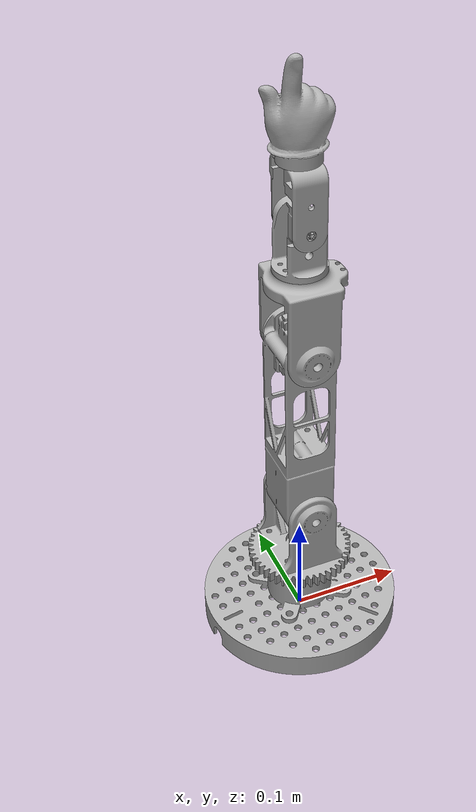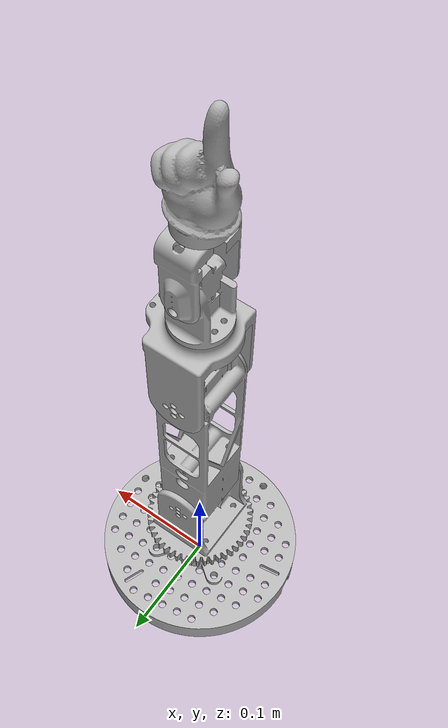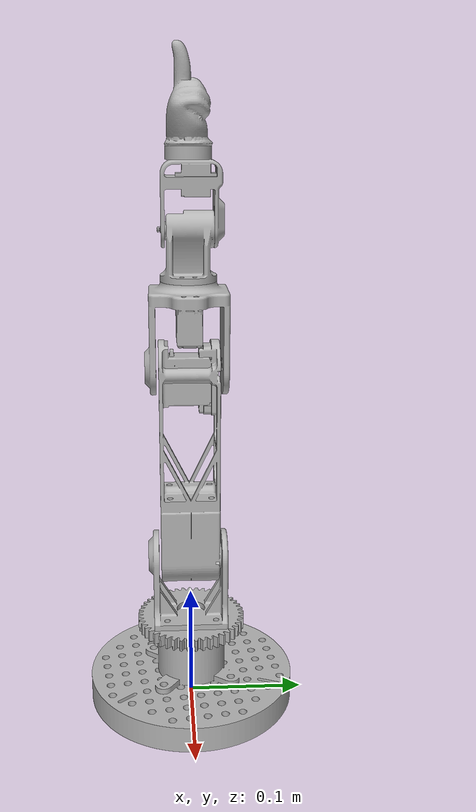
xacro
<?xml version="1.0"?>
<robot xmlns:xacro="http://www.ros.org/wiki/xacro" name="manipulator_ros2">
    <xacro:arg name="initial_positions_file" default="initial_positions.yaml" />

    <!-- Import manipulator_ros2 urdf file -->
    <xacro:include filename="$(find manipulator_ros2_description)/urdf/manipulator_ros2.xacro" />

    <!-- Import control_xacro -->
    <xacro:include filename="manipulator_ros2.ros2_control.xacro" />

    <xacro:manipulator_ros2_ros2_control name="FakeSystem" initial_positions_file="$(arg initial_positions_file)"/>

</robot>

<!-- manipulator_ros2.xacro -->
<robot name="manipulator_ros2" xmlns:xacro="http://www.ros.org/wiki/xacro">

<xacro:include filename="$(find manipulator_ros2_description)/urdf/materials.xacro" />
<xacro:include filename="$(find manipulator_ros2_description)/urdf/manipulator_ros2.trans" />
<xacro:include filename="$(find manipulator_ros2_description)/urdf/manipulator_ros2.gazebo" />

<link name="base_link">
  <inertial>
    <origin xyz="0.00014955285846922025 2.2839923289743684e-05 0.0290981401490612" rpy="0 0 0"/>
    <mass value="0.25826224486529137"/>
    <inertia ixx="0.00044" iyy="0.000436" izz="0.000759" ixy="1e-06" iyz="0.0" ixz="1e-06"/>
  </inertial>
  <visual>
    <origin xyz="0 0 0" rpy="0 0 0"/>
    <geometry>
      <mesh filename="file://$(find manipulator_ros2_description)/meshes/base_link.stl" scale="0.001 0.001 0.001"/>
    </geometry>
    <material name="silver"/>
  </visual>
  <collision>
    <origin xyz="0 0 0" rpy="0 0 0"/>
    <geometry>
      <mesh filename="file://$(find manipulator_ros2_description)/meshes/base_link.stl" scale="0.001 0.001 0.001"/>
    </geometry>
  </collision>
</link>

<link name="link_1_1">
  <inertial>
    <origin xyz="-4.758358515705865e-06 -0.0009697104964107475 0.023444674137823543" rpy="0 0 0"/>
    <mass value="0.12358014218717779"/>
    <inertia ixx="0.000136" iyy="0.000109" izz="0.000114" ixy="0.0" iyz="5e-06" ixz="0.0"/>
  </inertial>
  <visual>
    <origin xyz="-0.0 -0.0 -0.063" rpy="0 0 0"/>
    <geometry>
      <mesh filename="file://$(find manipulator_ros2_description)/meshes/link_1_1.stl" scale="0.001 0.001 0.001"/>
    </geometry>
    <material name="silver"/>
  </visual>
  <collision>
    <origin xyz="-0.0 -0.0 -0.063" rpy="0 0 0"/>
    <geometry>
      <mesh filename="file://$(find manipulator_ros2_description)/meshes/link_1_1.stl" scale="0.001 0.001 0.001"/>
    </geometry>
  </collision>
</link>

<link name="link_2_1">
  <inertial>
    <origin xyz="-9.819895678735285e-05 -0.00014693334989390684 0.07181187739780545" rpy="0 0 0"/>
    <mass value="0.19645503989254853"/>
    <inertia ixx="0.000895" iyy="0.00088" izz="8.3e-05" ixy="0.0" iyz="2e-06" ixz="1e-06"/>
  </inertial>
  <visual>
    <origin xyz="2.7e-05 0.000565 -0.135511" rpy="0 0 0"/>
    <geometry>
      <mesh filename="file://$(find manipulator_ros2_description)/meshes/link_2_1.stl" scale="0.001 0.001 0.001"/>
    </geometry>
    <material name="silver"/>
  </visual>
  <collision>
    <origin xyz="2.7e-05 0.000565 -0.135511" rpy="0 0 0"/>
    <geometry>
      <mesh filename="file://$(find manipulator_ros2_description)/meshes/link_2_1.stl" scale="0.001 0.001 0.001"/>
    </geometry>
  </collision>
</link>

<link name="link_3_1">
  <inertial>
    <origin xyz="0.004087787989537511 -0.0009393142455362529 0.03926993227588771" rpy="0 0 0"/>
    <mass value="0.09551397551862403"/>
    <inertia ixx="9.1e-05" iyy="7e-05" izz="6.3e-05" ixy="-0.0" iyz="-3e-06" ixz="-2e-06"/>
  </inertial>
  <visual>
    <origin xyz="7.4e-05 0.000665 -0.304933" rpy="0 0 0"/>
    <geometry>
      <mesh filename="file://$(find manipulator_ros2_description)/meshes/link_3_1.stl" scale="0.001 0.001 0.001"/>
    </geometry>
    <material name="silver"/>
  </visual>
  <collision>
    <origin xyz="7.4e-05 0.000665 -0.304933" rpy="0 0 0"/>
    <geometry>
      <mesh filename="file://$(find manipulator_ros2_description)/meshes/link_3_1.stl" scale="0.001 0.001 0.001"/>
    </geometry>
  </collision>
</link>

<link name="link_4_1">
  <inertial>
    <origin xyz="0.0014822815844658618 0.0003280078370169844 0.0232381041762576" rpy="0 0 0"/>
    <mass value="0.038346600988021666"/>
    <inertia ixx="1.5e-05" iyy="1.2e-05" izz="7e-06" ixy="0.0" iyz="-0.0" ixz="-1e-06"/>
  </inertial>
  <visual>
    <origin xyz="-0.000134 0.000665 -0.375933" rpy="0 0 0"/>
    <geometry>
      <mesh filename="file://$(find manipulator_ros2_description)/meshes/link_4_1.stl" scale="0.001 0.001 0.001"/>
    </geometry>
    <material name="silver"/>
  </visual>
  <collision>
    <origin xyz="-0.000134 0.000665 -0.375933" rpy="0 0 0"/>
    <geometry>
      <mesh filename="file://$(find manipulator_ros2_description)/meshes/link_4_1.stl" scale="0.001 0.001 0.001"/>
    </geometry>
  </collision>
</link>

<link name="link_5_1">
  <inertial>
    <origin xyz="0.0005521354684447922 0.0027459905432425037 0.030587143020476326" rpy="0 0 0"/>
    <mass value="0.027851162297357537"/>
    <inertia ixx="1.5e-05" iyy="9e-06" izz="9e-06" ixy="-0.0" iyz="1e-06" ixz="-0.0"/>
  </inertial>
  <visual>
    <origin xyz="-0.000255 -0.000223 -0.416383" rpy="0 0 0"/>
    <geometry>
      <mesh filename="file://$(find manipulator_ros2_description)/meshes/link_5_1.stl" scale="0.001 0.001 0.001"/>
    </geometry>
    <material name="silver"/>
  </visual>
  <collision>
    <origin xyz="-0.000255 -0.000223 -0.416383" rpy="0 0 0"/>
    <geometry>
      <mesh filename="file://$(find manipulator_ros2_description)/meshes/link_5_1.stl" scale="0.001 0.001 0.001"/>
    </geometry>
  </collision>
</link>

<link name="efector_1">
  <inertial>
    <origin xyz="7.017441023660716e-05 0.0005969072529317497 0.02862334780746889" rpy="0 0 0"/>
    <mass value="0.46837075835083564"/>
    <inertia ixx="0.000172" iyy="0.000208" izz="9.2e-05" ixy="-0.0" iyz="-4e-06" ixz="-7e-06"/>
  </inertial>
  <visual>
    <origin xyz="-0.000272 -0.000224 -0.46885" rpy="0 0 3.14159"/>
    <geometry>
      <mesh filename="file://$(find manipulator_ros2_description)/meshes/efector_1.stl" scale="0.001 0.001 0.001"/>
    </geometry>
    <material name="silver"/>
  </visual>
  <collision>
    <origin xyz="-0.000272 -0.000224 -0.46885" rpy="0 0 3.14159"/>
    <geometry>
      <mesh filename="file://$(find manipulator_ros2_description)/meshes/efector_1.stl" scale="0.001 0.001 0.001"/>
    </geometry>
  </collision>
</link>

<joint name="joint_base_to_1" type="revolute">
  <origin xyz="0.0 0.0 0.063" rpy="0 0 0"/>
  <parent link="base_link"/>
  <child link="link_1_1"/>
  <axis xyz="0.0 0.0 1.0"/>
  <limit lower="-2.1293" upper="1.7802" effort="10.0" velocity="1.5"/>
</joint>

<joint name="joint_1_to_2" type="revolute">
  <origin xyz="-2.7e-05 -0.000565 0.072511" rpy="0 0 0"/>
  <parent link="link_1_1"/>
  <child link="link_2_1"/>
  <axis xyz="0.002718 -0.999996 0.0"/>
  <limit lower="-2.2689" upper="2.4435" effort="10.0" velocity="1.5"/>
</joint>

<joint name="joint_2_to_3" type="revolute">
  <origin xyz="-4.7e-05 -0.0001 0.169422" rpy="0 0 0"/>
  <parent link="link_2_1"/>
  <child link="link_3_1"/>
  <axis xyz="0.002718 -0.999996 -0.0"/>
  <limit lower="-2.4435" upper="2.2689" effort="10.0" velocity="1.5"/>
</joint>

<joint name="joint_3_to_4" type="revolute">
  <origin xyz="0.000208 0.0 0.071" rpy="0 0 0"/>
  <parent link="link_3_1"/>
  <child link="link_4_1"/>
  <axis xyz="0.002932 8e-06 0.999996"/>
  <limit lower="-1.3963" upper="1.7453" effort="10.0" velocity="1.5"/>
</joint>

<joint name="joint_4_to_5" type="revolute">
  <origin xyz="0.000121 0.000888 0.04045" rpy="0 0 0"/>
  <parent link="link_4_1"/>
  <child link="link_5_1"/>
  <axis xyz="0.003099 0.999995 -1.7e-05"/>
  <limit lower="-1.3963" upper="1.7453" effort="10.0" velocity="1.5"/>
</joint>

<joint name="joint_5_to_eff" type="revolute">
  <origin xyz="1.7e-05 1e-06 0.052467" rpy="0 0 0"/>
  <parent link="link_5_1"/>
  <child link="efector_1"/>
  <axis xyz="-0.004131 -4e-06 -0.999991"/>
  <limit lower="-1.5708" upper="1.5708" effort="10.0" velocity="1.5"/>
</joint>

</robot>

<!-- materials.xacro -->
<robot name="manipulator_ros2" xmlns:xacro="http://www.ros.org/wiki/xacro" >

<material name="silver">
  <color rgba="0.700 0.700 0.700 1.000"/>
</material>

</robot>

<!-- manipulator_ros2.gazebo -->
<robot name="manipulator_ros2" xmlns:xacro="http://www.ros.org/wiki/xacro" >

<xacro:property name="body_color" value="Gazebo/Silver" />

<gazebo>
  <plugin name="control" filename="libgazebo_ros_control.so"/>
</gazebo>
<gazebo reference="base_link">
  <material>${body_color}</material>
  <mu1>0.2</mu1>
  <mu2>0.2</mu2>
  <self_collide>true</self_collide>
  <gravity>true</gravity>
</gazebo>

<gazebo reference="link_1_1">
  <material>${body_color}</material>
  <mu1>0.2</mu1>
  <mu2>0.2</mu2>
  <self_collide>true</self_collide>
</gazebo>

<gazebo reference="link_2_1">
  <material>${body_color}</material>
  <mu1>0.2</mu1>
  <mu2>0.2</mu2>
  <self_collide>true</self_collide>
</gazebo>

<gazebo reference="link_3_1">
  <material>${body_color}</material>
  <mu1>0.2</mu1>
  <mu2>0.2</mu2>
  <self_collide>true</self_collide>
</gazebo>

<gazebo reference="link_4_1">
  <material>${body_color}</material>
  <mu1>0.2</mu1>
  <mu2>0.2</mu2>
  <self_collide>true</self_collide>
</gazebo>

<gazebo reference="link_5_1">
  <material>${body_color}</material>
  <mu1>0.2</mu1>
  <mu2>0.2</mu2>
  <self_collide>true</self_collide>
</gazebo>

<gazebo reference="efector_1">
  <material>${body_color}</material>
  <mu1>0.2</mu1>
  <mu2>0.2</mu2>
  <self_collide>true</self_collide>
</gazebo>

</robot>
